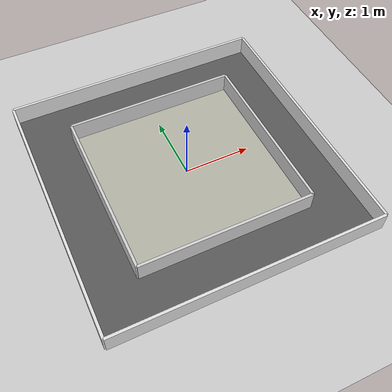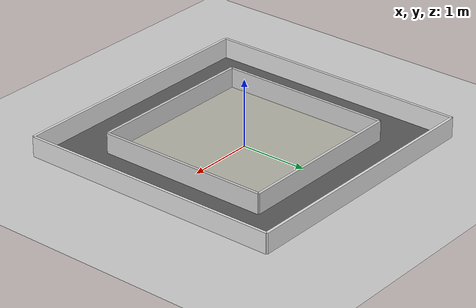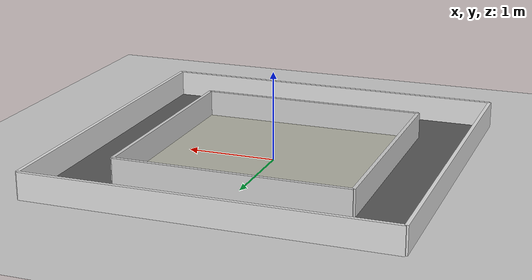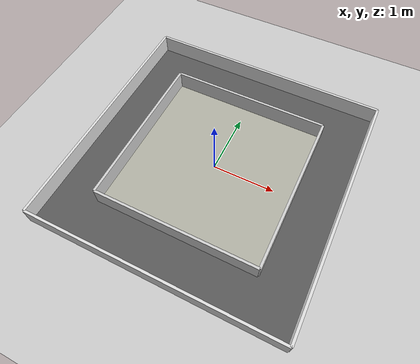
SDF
<?xml version="1.0"?>
<sdf version="1.6">
  <world name="test">

    <light name="sun" type="directional">
      <cast_shadows>1</cast_shadows>
      <pose>0 0 10 0 0 0</pose>
      <diffuse>0.8 0.8 0.8 1</diffuse>
      <specular>0.2 0.2 0.2 1</specular>
      <attenuation><range>1000</range><constant>0.9</constant><linear>0.01</linear><quadratic>0.001</quadratic></attenuation>
      <direction>-0.5 0.1 -0.9</direction>
    </light>

    <include><uri>model://ground_plane</uri></include>

    <model name="boundary_line">
      <static>true</static>
      <link name="n"><pose>0 2.0 0.001 0 0 0</pose><visual name="v"><geometry><box><size>4.0 0.02 0.002</size></box></geometry><material><ambient>0.15 0.15 0.15 1.0</ambient></material></visual></link>
      <link name="s"><pose>0 -2.0 0.001 0 0 0</pose><visual name="v"><geometry><box><size>4.0 0.02 0.002</size></box></geometry><material><ambient>0.15 0.15 0.15 1.0</ambient></material></visual></link>
      <link name="e"><pose>2.0 0 0.001 0 0 0</pose><visual name="v"><geometry><box><size>0.02 4.0 0.002</size></box></geometry><material><ambient>0.15 0.15 0.15 1.0</ambient></material></visual></link>
      <link name="w"><pose>-2.0 0 0.001 0 0 0</pose><visual name="v"><geometry><box><size>0.02 4.0 0.002</size></box></geometry><material><ambient>0.15 0.15 0.15 1.0</ambient></material></visual></link>
    </model>

    <model name="track_outer">
      <static>true</static>
      <link name="top"><pose>0 2.0 0.15 0 0 0</pose>
        <visual name="v"><geometry><box><size>4.0 0.040 0.3</size></box></geometry>
        <material><ambient>0.88 0.88 0.88 1.0</ambient></material></visual>
        <collision name="c"><geometry><box><size>4.0 0.040 0.3</size></box></geometry></collision></link>
      <link name="bottom"><pose>0 -2.0 0.15 0 0 0</pose>
        <visual name="v"><geometry><box><size>4.0 0.040 0.3</size></box></geometry>
        <material><ambient>0.88 0.88 0.88 1.0</ambient></material></visual>
        <collision name="c"><geometry><box><size>4.0 0.040 0.3</size></box></geometry></collision></link>
      <link name="left"><pose>-2.0 0 0.15 0 0 0</pose>
        <visual name="v"><geometry><box><size>0.040 4.0 0.3</size></box></geometry>
        <material><ambient>0.88 0.88 0.88 1.0</ambient></material></visual>
        <collision name="c"><geometry><box><size>0.040 4.0 0.3</size></box></geometry></collision></link>
      <link name="right"><pose>2.0 0 0.15 0 0 0</pose>
        <visual name="v"><geometry><box><size>0.040 4.0 0.3</size></box></geometry>
        <material><ambient>0.88 0.88 0.88 1.0</ambient></material></visual>
        <collision name="c"><geometry><box><size>0.040 4.0 0.3</size></box></geometry></collision></link>
    </model>

    <model name="track_inner">
      <static>true</static>
      <link name="top"><pose>0 1.3 0.15 0 0 0</pose>
        <visual name="v"><geometry><box><size>2.6 0.040 0.3</size></box></geometry>
        <material><ambient>0.82 0.82 0.82 1.0</ambient></material></visual>
        <collision name="c"><geometry><box><size>2.6 0.040 0.3</size></box></geometry></collision></link>
      <link name="bottom"><pose>0 -1.3 0.15 0 0 0</pose>
        <visual name="v"><geometry><box><size>2.6 0.040 0.3</size></box></geometry>
        <material><ambient>0.82 0.82 0.82 1.0</ambient></material></visual>
        <collision name="c"><geometry><box><size>2.6 0.040 0.3</size></box></geometry></collision></link>
      <link name="left"><pose>-1.3 0 0.15 0 0 0</pose>
        <visual name="v"><geometry><box><size>0.040 2.6 0.3</size></box></geometry>
        <material><ambient>0.82 0.82 0.82 1.0</ambient></material></visual>
        <collision name="c"><geometry><box><size>0.040 2.6 0.3</size></box></geometry></collision></link>
      <link name="right"><pose>1.3 0 0.15 0 0 0</pose>
        <visual name="v"><geometry><box><size>0.040 2.6 0.3</size></box></geometry>
        <material><ambient>0.82 0.82 0.82 1.0</ambient></material></visual>
        <collision name="c"><geometry><box><size>0.040 2.6 0.3</size></box></geometry></collision></link>
    </model>

    <model name="track_floor">
      <static>true</static>
      <link name="f"><pose>0 0 0.0005 0 0 0</pose>
        <visual name="v"><geometry><box><size>3.96 3.96 0.001</size></box></geometry>
        <material><ambient>0.35 0.35 0.35 1.0</ambient></material></visual></link>
    </model>

    <model name="island_floor">
      <static>true</static>
      <link name="f"><pose>0 0 0.0008 0 0 0</pose>
        <visual name="v"><geometry><box><size>2.60 2.60 0.001</size></box></geometry>
        <material><ambient>0.7 0.7 0.65 1.0</ambient></material></visual></link>
    </model>

    <gravity>0 0 -9.8</gravity>
    <physics name="default_physics" default="0" type="ode">
      <max_step_size>0.001</max_step_size>
      <real_time_factor>1</real_time_factor>
      <real_time_update_rate>1000</real_time_update_rate>
    </physics>
    <scene><ambient>0.4 0.4 0.4 1</ambient><background>0.7 0.7 0.7 1</background><shadows>1</shadows></scene>
  </world>
</sdf>
